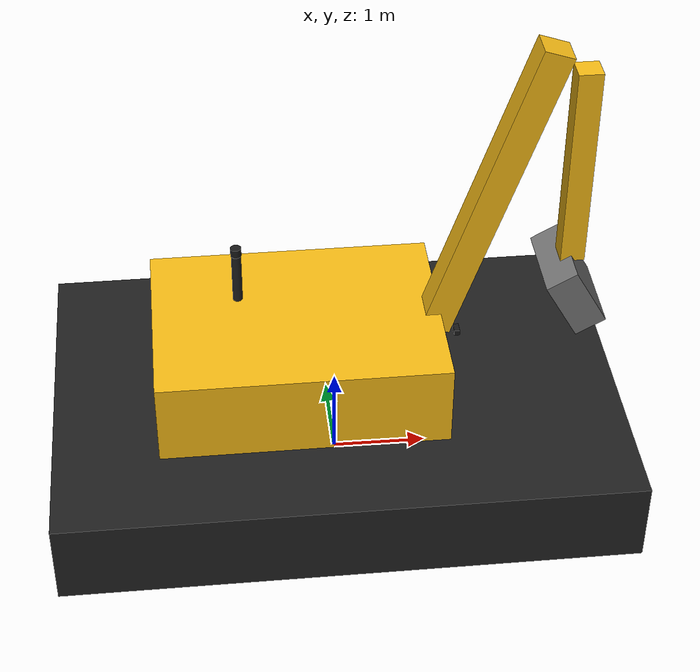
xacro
<?xml version="1.0"?>
<robot name="excavator_simple" xmlns:xacro="http://www.ros.org/wiki/xacro">

  <xacro:property name="chassis_mass" value="5000.0"/>
  <xacro:property name="chassis_len"  value="6.0"/>
  <xacro:property name="chassis_wid"  value="4.0"/>
  <xacro:property name="chassis_hgt"  value="0.9"/>

  <xacro:macro name="box_inertia" params="m x y z">
    <inertial>
      <mass value="${m}"/>
      <inertia ixx="${m*(y*y+z*z)/12.0}" ixy="0" ixz="0"
               iyy="${m*(x*x+z*z)/12.0}" iyz="0"
               izz="${m*(x*x+y*y)/12.0}"/>
    </inertial>
  </xacro:macro>

  <xacro:macro name="cylinder_inertia" params="m r h">
    <inertial>
      <mass value="${m}"/>
      <inertia ixx="${m*(3*r*r+h*h)/12.0}" ixy="0" ixz="0"
               iyy="${m*(3*r*r+h*h)/12.0}" iyz="0"
               izz="${m*r*r/2.0}"/>
    </inertial>
  </xacro:macro>

  <material name="excavator_yellow"><color rgba="0.95 0.72 0.08 1.0"/></material>
  <material name="dark_gray"><color rgba="0.12 0.12 0.12 1.0"/></material>
  <material name="steel_gray"><color rgba="0.45 0.45 0.45 1.0"/></material>

  <link name="base_footprint"/>
  <joint name="base_footprint_joint" type="fixed">
    <parent link="base_footprint"/>
    <child link="base_link"/>
    <origin xyz="0 0 0.5" rpy="0 0 0"/>
  </joint>

  <link name="base_link">
    <visual>
      <geometry><box size="${chassis_len} ${chassis_wid} ${chassis_hgt}"/></geometry>
      <material name="dark_gray"/>
    </visual>
      <collision>
      <geometry><box size="${chassis_len} ${chassis_wid} ${chassis_hgt}"/></geometry>
    </collision>
        <xacro:box_inertia m="${chassis_mass}" x="${chassis_len}" y="${chassis_wid}" z="${chassis_hgt}"/>
  </link>

  <gazebo reference="base_link">
    <material>Gazebo/DarkGray</material>
    <mu1>1.0</mu1>
    <mu2>1.0</mu2>
  </gazebo>

  <link name="turret_link">
    <visual>
      <origin xyz="-0.4 0 0" rpy="0 0 0"/>
      <geometry><box size="3.0 2.2 0.9"/></geometry>
      <material name="excavator_yellow"/>
    </visual>
    <collision>
      <origin xyz="-0.4 0 0" rpy="0 0 0"/>
      <geometry><box size="3.0 2.2 0.9"/></geometry>
    </collision>
        <xacro:box_inertia m="1800.0" x="3.0" y="2.2" z="0.9"/>
  </link>
  <joint name="turret_joint" type="fixed">
    <parent link="base_link"/>
    <child link="turret_link"/>
    <origin xyz="0 0 0.95" rpy="0 0 0"/>
  </joint>

  <link name="boom_link">
    <visual>
      <origin xyz="1.6 0 0.25" rpy="0 -0.20 0"/>
      <geometry><box size="3.4 0.32 0.32"/></geometry>
      <material name="excavator_yellow"/>
    </visual>
    <xacro:box_inertia m="80.0" x="3.4" y="0.32" z="0.32"/>
  </link>
  <joint name="boom_joint" type="fixed">
    <parent link="turret_link"/>
    <child link="boom_link"/>
    <origin xyz="1.0 0 0.35" rpy="0 -1.05 0"/>
  </joint>

  <link name="arm_link">
    <visual>
      <origin xyz="1.0 0 -0.15" rpy="0 0 0"/>
      <geometry><box size="2.2 0.25 0.25"/></geometry>
      <material name="excavator_yellow"/>
    </visual>
    <xacro:box_inertia m="50.0" x="2.2" y="0.25" z="0.25"/>
  </link>
  <joint name="arm_joint" type="fixed">
    <parent link="boom_link"/>
    <child link="arm_link"/>
    <origin xyz="3.2 0 0.0" rpy="0 2.62 0"/>
  </joint>

  <link name="bucket_link">
    <visual>
      <origin xyz="0.35 0 -0.25" rpy="0 0 0"/>
      <geometry><box size="0.7 0.9 0.35"/></geometry>
      <material name="steel_gray"/>
    </visual>
    <xacro:box_inertia m="40.0" x="0.7" y="0.9" z="0.35"/>
  </link>
  <joint name="bucket_joint" type="fixed">
    <parent link="arm_link"/>
    <child link="bucket_link"/>
    <origin xyz="2.0 0 -0.1" rpy="0 -0.52 0"/>
  </joint>

  <link name="sensor_mast_link">
    <visual>
      <geometry><cylinder radius="0.05" length="0.6"/></geometry>
      <material name="dark_gray"/>
    </visual>
    <collision>
      <geometry><cylinder radius="0.05" length="0.6"/></geometry>
    </collision>
    <xacro:cylinder_inertia m="2.0" r="0.05" h="0.6"/>
  </link>
  <joint name="sensor_mast_joint" type="fixed">
    <parent link="turret_link"/>
    <child link="sensor_mast_link"/>
    <origin xyz="-1.0 0 1.0" rpy="0 0 0"/>
  </joint>

  <xacro:include filename="$(find excavator_description)/urdf/sensors.xacro"/>

  <gazebo>
    <plugin name="planar_move_controller" filename="libgazebo_ros_planar_move.so">
      <commandTopic>cmd_vel</commandTopic>
      <odometryTopic>odom</odometryTopic>
      <odometryFrame>odom</odometryFrame>
      <odometryRate>20.0</odometryRate>
      <robotBaseFrame>base_footprint</robotBaseFrame>
    </plugin>
  </gazebo>

</robot>

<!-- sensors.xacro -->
<robot xmlns:xacro="http://www.ros.org/wiki/xacro">

  <!--
    sensors.xacro
    传感器模块：摄像头 + 激光雷达
    父连杆：turret_link（摄像头）、sensor_mast_link（激光雷达）
    frame_id 必须与 TF 树一致：camera_optical_link / lidar_link
  -->

  <xacro:property name="PI" value="3.14159265358979"/>

  <!-- ===== 摄像头连杆 ===== -->
  <link name="camera_link">
    <visual>
      <geometry>
        <box size="0.06 0.12 0.06"/>
      </geometry>
      <material name="sensor_black">
        <color rgba="0.1 0.1 0.1 1.0"/>
      </material>
    </visual>
    <collision>
      <geometry>
        <box size="0.06 0.12 0.06"/>
      </geometry>
    </collision>
    <inertial>
      <mass value="0.15"/>
      <inertia ixx="0.001" ixy="0" ixz="0"
               iyy="0.001" iyz="0"
               izz="0.001"/>
    </inertial>
  </link>

  <!-- 摄像头挂载到回转体前端，高于中心 0.1m，距轴线 1.3m -->
  <joint name="camera_joint" type="fixed">
    <parent link="turret_link"/>
    <child  link="camera_link"/>
    <origin xyz="1.3 0 0.1" rpy="0 0 0"/>
  </joint>

  <!-- 摄像头光学坐标系：ROS 惯例 Z 轴朝前，X 朝右 -->
  <link name="camera_optical_link"/>
  <joint name="camera_optical_joint" type="fixed">
    <parent link="camera_link"/>
    <child  link="camera_optical_link"/>
    <origin xyz="0 0 0" rpy="${-PI/2} 0 ${-PI/2}"/>
  </joint>

  <!-- ===== 激光雷达连杆 ===== -->
  <link name="lidar_link">
    <visual>
      <geometry>
        <cylinder radius="0.055" length="0.09"/>
      </geometry>
      <material name="sensor_black">
        <color rgba="0.1 0.1 0.1 1.0"/>
      </material>
    </visual>
    <collision>
      <geometry>
        <cylinder radius="0.055" length="0.09"/>
      </geometry>
    </collision>
    <inertial>
      <mass value="0.25"/>
      <!-- cylinder: Ixx=Iyy=m(3r²+h²)/12, Izz=mr²/2 -->
      <inertia ixx="0.000367" ixy="0" ixz="0"
               iyy="0.000367" iyz="0"
               izz="0.000379"/>
    </inertial>
  </link>

  <!-- 激光雷达挂载到传感器支架顶端 0.3m -->
  <joint name="lidar_joint" type="fixed">
    <parent link="sensor_mast_link"/>
    <child  link="lidar_link"/>
    <origin xyz="0 0 0.3" rpy="0 0 0"/>
  </joint>

  <!-- ===== Gazebo 插件：摄像头 ===== -->
  <gazebo reference="camera_link">
    <sensor type="camera" name="front_camera">
      <update_rate>30.0</update_rate>
      <camera name="head">
        <!-- 水平视角 90° -->
        <horizontal_fov>1.5708</horizontal_fov>
        <image>
          <width>640</width>
          <height>480</height>
          <format>R8G8B8</format>
        </image>
        <clip>
          <near>0.02</near>
          <far>300</far>
        </clip>
        <noise>
          <type>gaussian</type>
          <mean>0.0</mean>
          <stddev>0.007</stddev>
        </noise>
      </camera>
      <plugin name="camera_controller" filename="libgazebo_ros_camera.so">
        <alwaysOn>true</alwaysOn>
        <updateRate>30.0</updateRate>
        <cameraName>camera</cameraName>
        <imageTopicName>image_raw</imageTopicName>
        <cameraInfoTopicName>camera_info</cameraInfoTopicName>
        <!-- frameName 必须与 TF 中 camera_optical_link 一致 -->
        <frameName>camera_optical_link</frameName>
        <hackBaseline>0.0</hackBaseline>
      </plugin>
    </sensor>
  </gazebo>

  <!-- ===== Gazebo 插件：激光雷达 ===== -->
  <gazebo reference="lidar_link">
    <sensor type="ray" name="lidar_sensor">
      <pose>0 0 0 0 0 0</pose>
      <!-- 仿真中不显示射线（正式测试），调试时改为 true -->
      <visualize>false</visualize>
      <update_rate>10.0</update_rate>
      <ray>
        <scan>
          <horizontal>
            <!-- 360°，1° 分辨率 = 360 采样 -->
            <samples>360</samples>
            <resolution>1</resolution>
            <min_angle>-3.14159265</min_angle>
            <max_angle>3.14159265</max_angle>
          </horizontal>
        </scan>
        <range>
          <min>0.10</min>
          <max>15.0</max>
          <resolution>0.01</resolution>
        </range>
        <noise>
          <type>gaussian</type>
          <mean>0.0</mean>
          <stddev>0.01</stddev>
        </noise>
      </ray>
      <plugin name="gazebo_ros_lidar" filename="libgazebo_ros_laser.so">
        <topicName>/lidar/scan</topicName>
        <!-- frameName 与 TF lidar_link 一致 -->
        <frameName>lidar_link</frameName>
      </plugin>
    </sensor>
  </gazebo>

</robot>
